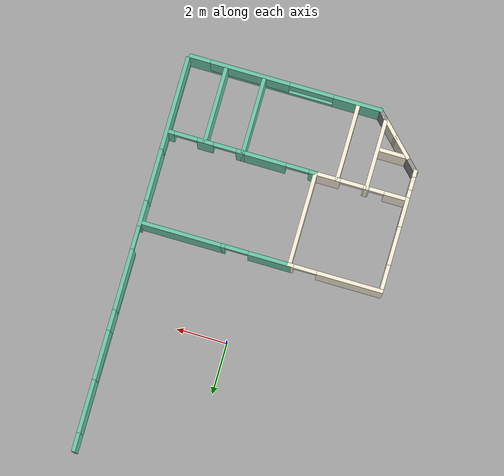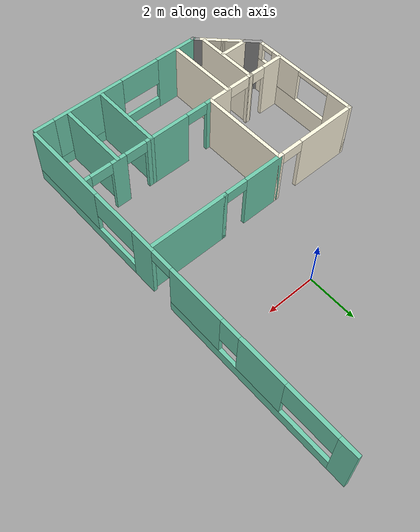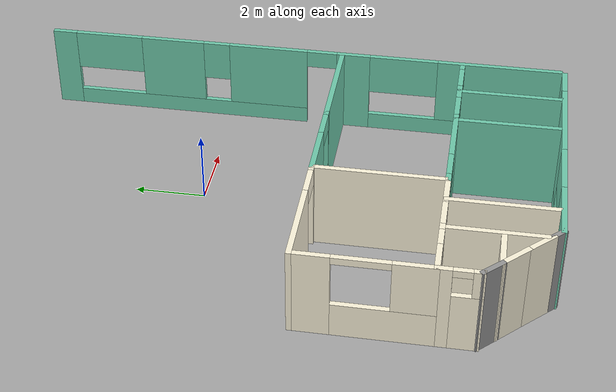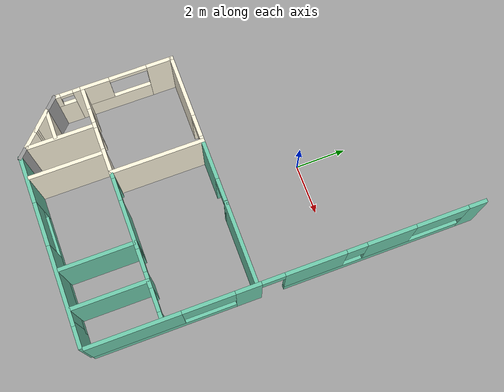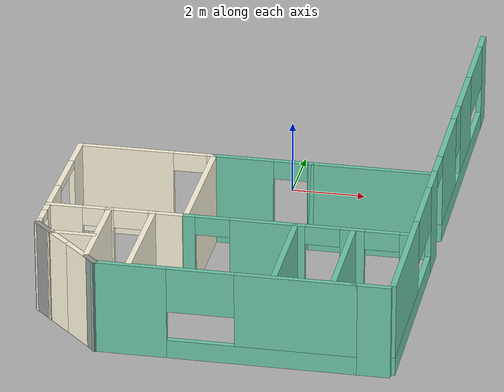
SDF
<sdf version="1.6">
 <model name="Building">
  <pose>-0.371028 -2.14186 0 0 -0 0</pose>
  <link name="Wall_103">
   <collision name="Wall_103_Collision">
    <geometry><box><size>2.75 0.15 2.5</size></box></geometry>
    <pose>0 0 1.25 0 -0 0</pose>
   </collision>
   <visual name="Wall_103_Visual">
    <pose>0 0 1.25 0 -0 0</pose>
    <geometry><box><size>2.75 0.15 2.5</size></box></geometry>
    <material>
     <script><uri>file://media/materials/scripts/gazebo.material</uri><name>Gazebo/Grey</name></script>
     <ambient>1 0.968627 0.870588 1</ambient>
    </material>
    <meta><layer>0</layer></meta>
   </visual>
   <pose>-3.10082 -6.11639 0 0 -0 1.5708</pose>
  </link>
  <link name="Wall_105">
   <collision name="Wall_105_Collision">
    <geometry><box><size>1.0071 0.15 2.5</size></box></geometry>
    <pose>0 0 1.25 0 -0 0</pose>
   </collision>
   <visual name="Wall_105_Visual">
    <pose>0 0 1.25 0 -0 0</pose>
    <geometry><box><size>1.0071 0.15 2.5</size></box></geometry>
    <material>
     <script><uri>file://media/materials/scripts/gazebo.material</uri><name>Gazebo/Grey</name></script>
     <ambient>1 0.968627 0.870588 1</ambient>
    </material>
    <meta><layer>0</layer></meta>
   </visual>
   <pose>-3.96602 -6.6535 0 0 0 -0.777148</pose>
  </link>
  <link name="Wall_106">
   <collision name="Wall_106_Collision">
    <geometry><box><size>1 0.15 2.5</size></box></geometry>
    <pose>0 0 1.25 0 -0 0</pose>
   </collision>
   <visual name="Wall_106_Visual">
    <pose>0 0 1.25 0 -0 0</pose>
    <geometry><box><size>1 0.15 2.5</size></box></geometry>
    <material>
     <script><uri>file://media/materials/scripts/gazebo.material</uri><name>Gazebo/Grey</name></script>
     <ambient>1 0.968627 0.870588 1</ambient>
    </material>
    <meta><layer>0</layer></meta>
   </visual>
   <pose>-3.35998 -7.25454 0 0 0 -0.785398</pose>
  </link>
  <link name="Wall_107">
   <collision name="Wall_107_Collision">
    <geometry><box><size>0.5 0.15 2.5</size></box></geometry>
    <pose>0 0 1.25 0 -0 0</pose>
   </collision>
   <visual name="Wall_107_Visual">
    <pose>0 0 1.25 0 -0 0</pose>
    <geometry><box><size>0.5 0.15 2.5</size></box></geometry>
    <material>
     <script><uri>file://media/materials/scripts/gazebo.material</uri><name>Gazebo/Grey</name></script>
     <ambient>1 1 1 1</ambient>
    </material>
    <meta><layer>0</layer></meta>
   </visual>
   <pose>-2.93571 -7.6788 0 0 0 -0.785398</pose>
  </link>
  <link name="Wall_108">
   <pose>0.488031 -7.80255 0 0 -0 0</pose>
   <visual name="Wall_108_Visual_0">
    <pose>-2.41446 0 1.25 0 -0 0</pose>
    <geometry><box><size>1.92107 0.15 2.5</size></box></geometry>
    <material>
     <script><uri>file://media/materials/scripts/gazebo.material</uri><name>Gazebo/Grey</name></script>
     <ambient>0.435294 0.796078 0.67451 1</ambient>
    </material>
    <meta><layer>0</layer></meta>
   </visual>
   <collision name="Wall_108_Collision_0">
    <geometry><box><size>1.92107 0.15 2.5</size></box></geometry>
    <pose>-2.41446 0 1.25 0 -0 0</pose>
   </collision>
   <visual name="Wall_108_Visual_1">
    <pose>0.960535 0 0.25 0 -0 0</pose>
    <geometry><box><size>4.82893 0.15 0.5</size></box></geometry>
    <material>
     <script><uri>file://media/materials/scripts/gazebo.material</uri><name>Gazebo/Grey</name></script>
     <ambient>0.435294 0.796078 0.67451 1</ambient>
    </material>
    <meta><layer>0</layer></meta>
   </visual>
   <collision name="Wall_108_Collision_1">
    <geometry><box><size>4.82893 0.15 0.5</size></box></geometry>
    <pose>0.960535 0 0.25 0 -0 0</pose>
   </collision>
   <visual name="Wall_108_Visual_2">
    <pose>1.82294 0 1.5 0 -0 0</pose>
    <geometry><box><size>3.10413 0.15 2</size></box></geometry>
    <material>
     <script><uri>file://media/materials/scripts/gazebo.material</uri><name>Gazebo/Grey</name></script>
     <ambient>0.435294 0.796078 0.67451 1</ambient>
    </material>
    <meta><layer>0</layer></meta>
   </visual>
   <collision name="Wall_108_Collision_2">
    <geometry><box><size>3.10413 0.15 2</size></box></geometry>
    <pose>1.82294 0 1.5 0 -0 0</pose>
   </collision>
   <visual name="Wall_108_Visual_3">
    <pose>-0.591528 0 1.9 0 -0 0</pose>
    <geometry><box><size>1.7248 0.15 1.2</size></box></geometry>
    <material>
     <script><uri>file://media/materials/scripts/gazebo.material</uri><name>Gazebo/Grey</name></script>
     <ambient>0.435294 0.796078 0.67451 1</ambient>
    </material>
    <meta><layer>0</layer></meta>
   </visual>
   <collision name="Wall_108_Collision_3">
    <geometry><box><size>1.7248 0.15 1.2</size></box></geometry>
    <pose>-0.591528 0 1.9 0 -0 0</pose>
   </collision>
  </link>
  <link name="Wall_112">
   <collision name="Wall_112_Collision">
    <geometry><box><size>1 0.15 2.5</size></box></geometry>
    <pose>0 0 1.25 0 -0 0</pose>
   </collision>
   <visual name="Wall_112_Visual">
    <pose>0 0 1.25 0 -0 0</pose>
    <geometry><box><size>1 0.15 2.5</size></box></geometry>
    <material>
     <script><uri>file://media/materials/scripts/gazebo.material</uri><name>Gazebo/Grey</name></script>
     <ambient>0.435294 0.796078 0.67451 1</ambient>
    </material>
    <meta><layer>0</layer></meta>
   </visual>
   <pose>4.21303 -7.80255 0 0 -0 0</pose>
  </link>
  <link name="Wall_131">
   <pose>0.319198 -4.81871 0 0 -0 0</pose>
   <visual name="Wall_131_Visual_0">
    <pose>-1.33501 0 1.25 0 -0 0</pose>
    <geometry><box><size>0.329979 0.15 2.5</size></box></geometry>
    <material>
     <script><uri>file://media/materials/scripts/gazebo.material</uri><name>Gazebo/Grey</name></script>
     <ambient>0.435294 0.796078 0.67451 1</ambient>
    </material>
    <meta><layer>0</layer></meta>
   </visual>
   <collision name="Wall_131_Collision_0">
    <geometry><box><size>0.329979 0.15 2.5</size></box></geometry>
    <pose>-1.33501 0 1.25 0 -0 0</pose>
   </collision>
   <visual name="Wall_131_Visual_1">
    <pose>0.614989 0 1.25 0 -0 0</pose>
    <geometry><box><size>1.77002 0.15 2.5</size></box></geometry>
    <material>
     <script><uri>file://media/materials/scripts/gazebo.material</uri><name>Gazebo/Grey</name></script>
     <ambient>0.435294 0.796078 0.67451 1</ambient>
    </material>
    <meta><layer>0</layer></meta>
   </visual>
   <collision name="Wall_131_Collision_1">
    <geometry><box><size>1.77002 0.15 2.5</size></box></geometry>
    <pose>0.614989 0 1.25 0 -0 0</pose>
   </collision>
   <visual name="Wall_131_Visual_2">
    <pose>-0.720021 0 2.25 0 -0 0</pose>
    <geometry><box><size>0.9 0.15 0.5</size></box></geometry>
    <material>
     <script><uri>file://media/materials/scripts/gazebo.material</uri><name>Gazebo/Grey</name></script>
     <ambient>0.435294 0.796078 0.67451 1</ambient>
    </material>
    <meta><layer>0</layer></meta>
   </visual>
   <collision name="Wall_131_Collision_2">
    <geometry><box><size>0.9 0.15 0.5</size></box></geometry>
    <pose>-0.720021 0 2.25 0 -0 0</pose>
   </collision>
  </link>
  <link name="Wall_132">
   <collision name="Wall_132_Collision">
    <geometry><box><size>3 0.15 2.5</size></box></geometry>
    <pose>0 0 1.25 0 -0 0</pose>
   </collision>
   <visual name="Wall_132_Visual">
    <pose>0 0 1.25 0 -0 0</pose>
    <geometry><box><size>3 0.15 2.5</size></box></geometry>
    <material>
     <script><uri>file://media/materials/scripts/gazebo.material</uri><name>Gazebo/Grey</name></script>
     <ambient>0.435294 0.796078 0.67451 1</ambient>
    </material>
    <meta><layer>0</layer></meta>
   </visual>
   <pose>1.7442 -6.24371 0 0 0 -1.5708</pose>
  </link>
  <link name="Wall_135">
   <pose>3.1692 -4.81871 0 0 -0 0</pose>
   <visual name="Wall_135_Visual_0">
    <pose>-1.33501 0 1.25 0 -0 0</pose>
    <geometry><box><size>0.329979 0.15 2.5</size></box></geometry>
    <material>
     <script><uri>file://media/materials/scripts/gazebo.material</uri><name>Gazebo/Grey</name></script>
     <ambient>0.435294 0.796078 0.67451 1</ambient>
    </material>
    <meta><layer>0</layer></meta>
   </visual>
   <collision name="Wall_135_Collision_0">
    <geometry><box><size>0.329979 0.15 2.5</size></box></geometry>
    <pose>-1.33501 0 1.25 0 -0 0</pose>
   </collision>
   <visual name="Wall_135_Visual_1">
    <pose>0.044978 0 1.25 0 -0 0</pose>
    <geometry><box><size>0.63 0.15 2.5</size></box></geometry>
    <material>
     <script><uri>file://media/materials/scripts/gazebo.material</uri><name>Gazebo/Grey</name></script>
     <ambient>0.435294 0.796078 0.67451 1</ambient>
    </material>
    <meta><layer>0</layer></meta>
   </visual>
   <collision name="Wall_135_Collision_1">
    <geometry><box><size>0.63 0.15 2.5</size></box></geometry>
    <pose>0.044978 0 1.25 0 -0 0</pose>
   </collision>
   <visual name="Wall_135_Visual_2">
    <pose>1.37999 0 1.25 0 -0 0</pose>
    <geometry><box><size>0.240022 0.15 2.5</size></box></geometry>
    <material>
     <script><uri>file://media/materials/scripts/gazebo.material</uri><name>Gazebo/Grey</name></script>
     <ambient>0.435294 0.796078 0.67451 1</ambient>
    </material>
    <meta><layer>0</layer></meta>
   </visual>
   <collision name="Wall_135_Collision_2">
    <geometry><box><size>0.240022 0.15 2.5</size></box></geometry>
    <pose>1.37999 0 1.25 0 -0 0</pose>
   </collision>
   <visual name="Wall_135_Visual_3">
    <pose>-0.720021 0 2.25 0 -0 0</pose>
    <geometry><box><size>0.9 0.15 0.5</size></box></geometry>
    <material>
     <script><uri>file://media/materials/scripts/gazebo.material</uri><name>Gazebo/Grey</name></script>
     <ambient>0.435294 0.796078 0.67451 1</ambient>
    </material>
    <meta><layer>0</layer></meta>
   </visual>
   <collision name="Wall_135_Collision_3">
    <geometry><box><size>0.9 0.15 0.5</size></box></geometry>
    <pose>-0.720021 0 2.25 0 -0 0</pose>
   </collision>
   <visual name="Wall_135_Visual_4">
    <pose>0.809978 0 2.25 0 -0 0</pose>
    <geometry><box><size>0.9 0.15 0.5</size></box></geometry>
    <material>
     <script><uri>file://media/materials/scripts/gazebo.material</uri><name>Gazebo/Grey</name></script>
     <ambient>0.435294 0.796078 0.67451 1</ambient>
    </material>
    <meta><layer>0</layer></meta>
   </visual>
   <collision name="Wall_135_Collision_4">
    <geometry><box><size>0.9 0.15 0.5</size></box></geometry>
    <pose>0.809978 0 2.25 0 -0 0</pose>
   </collision>
  </link>
  <link name="Wall_137">
   <collision name="Wall_137_Collision">
    <geometry><box><size>3 0.15 2.5</size></box></geometry>
    <pose>0 0 1.25 0 -0 0</pose>
   </collision>
   <visual name="Wall_137_Visual">
    <pose>0 0 1.25 0 -0 0</pose>
    <geometry><box><size>3 0.15 2.5</size></box></geometry>
    <material>
     <script><uri>file://media/materials/scripts/gazebo.material</uri><name>Gazebo/Grey</name></script>
     <ambient>0.435294 0.796078 0.67451 1</ambient>
    </material>
    <meta><layer>0</layer></meta>
   </visual>
   <pose>3.23918 -6.26139 0 0 0 -1.5708</pose>
  </link>
  <link name="Wall_36">
   <pose>4.73687 0.016508 0 0 0 -1.5708</pose>
   <visual name="Wall_36_Visual_0">
    <pose>-7.38566 0 1.25 0 -0 0</pose>
    <geometry><box><size>0.728677 0.15 2.5</size></box></geometry>
    <material>
     <script><uri>file://media/materials/scripts/gazebo.material</uri><name>Gazebo/Grey</name></script>
     <ambient>0.435294 0.796078 0.67451 1</ambient>
    </material>
    <meta><layer>0</layer></meta>
   </visual>
   <collision name="Wall_36_Collision_0">
    <geometry><box><size>0.728677 0.15 2.5</size></box></geometry>
    <pose>-7.38566 0 1.25 0 -0 0</pose>
   </collision>
   <visual name="Wall_36_Visual_1">
    <pose>1.57462 0 1.25 0 -0 0</pose>
    <geometry><box><size>1.00346 0.15 2.5</size></box></geometry>
    <material>
     <script><uri>file://media/materials/scripts/gazebo.material</uri><name>Gazebo/Grey</name></script>
     <ambient>0.435294 0.796078 0.67451 1</ambient>
    </material>
    <meta><layer>0</layer></meta>
   </visual>
   <collision name="Wall_36_Collision_1">
    <geometry><box><size>1.00346 0.15 2.5</size></box></geometry>
    <pose>1.57462 0 1.25 0 -0 0</pose>
   </collision>
   <visual name="Wall_36_Visual_2">
    <pose>-3.42421 0 0.25 0 -0 0</pose>
    <geometry><box><size>7.19422 0.15 0.5</size></box></geometry>
    <material>
     <script><uri>file://media/materials/scripts/gazebo.material</uri><name>Gazebo/Grey</name></script>
     <ambient>0.435294 0.796078 0.67451 1</ambient>
    </material>
    <meta><layer>0</layer></meta>
   </visual>
   <collision name="Wall_36_Collision_2">
    <geometry><box><size>7.19422 0.15 0.5</size></box></geometry>
    <pose>-3.42421 0 0.25 0 -0 0</pose>
   </collision>
   <visual name="Wall_36_Visual_3">
    <pose>4.91318 0 0.25 0 -0 0</pose>
    <geometry><box><size>5.67365 0.15 0.5</size></box></geometry>
    <material>
     <script><uri>file://media/materials/scripts/gazebo.material</uri><name>Gazebo/Grey</name></script>
     <ambient>0.435294 0.796078 0.67451 1</ambient>
    </material>
    <meta><layer>0</layer></meta>
   </visual>
   <collision name="Wall_36_Collision_3">
    <geometry><box><size>5.67365 0.15 0.5</size></box></geometry>
    <pose>4.91318 0 0.25 0 -0 0</pose>
   </collision>
   <visual name="Wall_36_Visual_4">
    <pose>-3.98224 0 1.5 0 -0 0</pose>
    <geometry><box><size>1.93682 0.15 2</size></box></geometry>
    <material>
     <script><uri>file://media/materials/scripts/gazebo.material</uri><name>Gazebo/Grey</name></script>
     <ambient>0.435294 0.796078 0.67451 1</ambient>
    </material>
    <meta><layer>0</layer></meta>
   </visual>
   <collision name="Wall_36_Collision_4">
    <geometry><box><size>1.93682 0.15 2</size></box></geometry>
    <pose>-3.98224 0 1.5 0 -0 0</pose>
   </collision>
   <visual name="Wall_36_Visual_5">
    <pose>-1.02047 0 1.5 0 -0 0</pose>
    <geometry><box><size>2.38673 0.15 2</size></box></geometry>
    <material>
     <script><uri>file://media/materials/scripts/gazebo.material</uri><name>Gazebo/Grey</name></script>
     <ambient>0.435294 0.796078 0.67451 1</ambient>
    </material>
    <meta><layer>0</layer></meta>
   </visual>
   <collision name="Wall_36_Collision_5">
    <geometry><box><size>2.38673 0.15 2</size></box></geometry>
    <pose>-1.02047 0 1.5 0 -0 0</pose>
   </collision>
   <visual name="Wall_36_Visual_6">
    <pose>-1.02047 0 1.5 0 -0 0</pose>
    <geometry><box><size>2.38673 0.15 2</size></box></geometry>
    <material>
     <script><uri>file://media/materials/scripts/gazebo.material</uri><name>Gazebo/Grey</name></script>
     <ambient>0.435294 0.796078 0.67451 1</ambient>
    </material>
    <meta><layer>0</layer></meta>
   </visual>
   <collision name="Wall_36_Collision_6">
    <geometry><box><size>2.38673 0.15 2</size></box></geometry>
    <pose>-1.02047 0 1.5 0 -0 0</pose>
   </collision>
   <visual name="Wall_36_Visual_7">
    <pose>5.92595 0 1.5 0 -0 0</pose>
    <geometry><box><size>3.64809 0.15 2</size></box></geometry>
    <material>
     <script><uri>file://media/materials/scripts/gazebo.material</uri><name>Gazebo/Grey</name></script>
     <ambient>0.435294 0.796078 0.67451 1</ambient>
    </material>
    <meta><layer>0</layer></meta>
   </visual>
   <collision name="Wall_36_Collision_7">
    <geometry><box><size>3.64809 0.15 2</size></box></geometry>
    <pose>5.92595 0 1.5 0 -0 0</pose>
   </collision>
   <visual name="Wall_36_Visual_8">
    <pose>-5.98599 0 1.9 0 -0 0</pose>
    <geometry><box><size>2.07067 0.15 1.2</size></box></geometry>
    <material>
     <script><uri>file://media/materials/scripts/gazebo.material</uri><name>Gazebo/Grey</name></script>
     <ambient>0.435294 0.796078 0.67451 1</ambient>
    </material>
    <meta><layer>0</layer></meta>
   </visual>
   <collision name="Wall_36_Collision_8">
    <geometry><box><size>2.07067 0.15 1.2</size></box></geometry>
    <pose>-5.98599 0 1.9 0 -0 0</pose>
   </collision>
   <visual name="Wall_36_Visual_9">
    <pose>3.08913 0 1.9 0 -0 0</pose>
    <geometry><box><size>2.02556 0.15 1.2</size></box></geometry>
    <material>
     <script><uri>file://media/materials/scripts/gazebo.material</uri><name>Gazebo/Grey</name></script>
     <ambient>0.435294 0.796078 0.67451 1</ambient>
    </material>
    <meta><layer>0</layer></meta>
   </visual>
   <collision name="Wall_36_Collision_9">
    <geometry><box><size>2.02556 0.15 1.2</size></box></geometry>
    <pose>3.08913 0 1.9 0 -0 0</pose>
   </collision>
   <visual name="Wall_36_Visual_10">
    <pose>-2.61383 0 1.9 0 -0 0</pose>
    <geometry><box><size>0.8 0.15 1.2</size></box></geometry>
    <material>
     <script><uri>file://media/materials/scripts/gazebo.material</uri><name>Gazebo/Grey</name></script>
     <ambient>0.435294 0.796078 0.67451 1</ambient>
    </material>
    <meta><layer>0</layer></meta>
   </visual>
   <collision name="Wall_36_Collision_10">
    <geometry><box><size>0.8 0.15 1.2</size></box></geometry>
    <pose>-2.61383 0 1.9 0 -0 0</pose>
   </collision>
   <visual name="Wall_36_Visual_11">
    <pose>0.622896 0 2.25 0 -0 0</pose>
    <geometry><box><size>0.9 0.15 0.5</size></box></geometry>
    <material>
     <script><uri>file://media/materials/scripts/gazebo.material</uri><name>Gazebo/Grey</name></script>
     <ambient>0.435294 0.796078 0.67451 1</ambient>
    </material>
    <meta><layer>0</layer></meta>
   </visual>
   <collision name="Wall_36_Collision_11">
    <geometry><box><size>0.9 0.15 0.5</size></box></geometry>
    <pose>0.622896 0 2.25 0 -0 0</pose>
   </collision>
   <visual name="Wall_36_Visual_12">
    <pose>0.622896 0 2.25 0 -0 0</pose>
    <geometry><box><size>0.9 0.15 0.5</size></box></geometry>
    <material>
     <script><uri>file://media/materials/scripts/gazebo.material</uri><name>Gazebo/Grey</name></script>
     <ambient>0.435294 0.796078 0.67451 1</ambient>
    </material>
    <meta><layer>0</layer></meta>
   </visual>
   <collision name="Wall_36_Collision_12">
    <geometry><box><size>0.9 0.15 0.5</size></box></geometry>
    <pose>0.622896 0 2.25 0 -0 0</pose>
   </collision>
  </link>
  <link name="Wall_46">
   <pose>-2.9058 -1.21871 0 0 -0 0</pose>
   <visual name="Wall_46_Visual_0">
    <pose>-0.575011 0 1.25 0 -0 0</pose>
    <geometry><box><size>2.59998 0.15 2.5</size></box></geometry>
    <material>
     <script><uri>file://media/materials/scripts/gazebo.material</uri><name>Gazebo/Grey</name></script>
     <ambient>1 0.968627 0.870588 1</ambient>
    </material>
    <meta><layer>0</layer></meta>
   </visual>
   <collision name="Wall_46_Collision_0">
    <geometry><box><size>2.59998 0.15 2.5</size></box></geometry>
    <pose>-0.575011 0 1.25 0 -0 0</pose>
   </collision>
   <visual name="Wall_46_Visual_1">
    <pose>1.74999 0 1.25 0 -0 0</pose>
    <geometry><box><size>0.250022 0.15 2.5</size></box></geometry>
    <material>
     <script><uri>file://media/materials/scripts/gazebo.material</uri><name>Gazebo/Grey</name></script>
     <ambient>1 0.968627 0.870588 1</ambient>
    </material>
    <meta><layer>0</layer></meta>
   </visual>
   <collision name="Wall_46_Collision_1">
    <geometry><box><size>0.250022 0.15 2.5</size></box></geometry>
    <pose>1.74999 0 1.25 0 -0 0</pose>
   </collision>
   <visual name="Wall_46_Visual_2">
    <pose>1.17498 0 2.25 0 -0 0</pose>
    <geometry><box><size>0.9 0.15 0.5</size></box></geometry>
    <material>
     <script><uri>file://media/materials/scripts/gazebo.material</uri><name>Gazebo/Grey</name></script>
     <ambient>1 0.968627 0.870588 1</ambient>
    </material>
    <meta><layer>0</layer></meta>
   </visual>
   <collision name="Wall_46_Collision_2">
    <geometry><box><size>0.9 0.15 0.5</size></box></geometry>
    <pose>1.17498 0 2.25 0 -0 0</pose>
   </collision>
  </link>
  <link name="Wall_62">
   <collision name="Wall_62_Collision">
    <geometry><box><size>3.75 0.15 2.5</size></box></geometry>
    <pose>0 0 1.25 0 -0 0</pose>
   </collision>
   <visual name="Wall_62_Visual">
    <pose>0 0 1.25 0 -0 0</pose>
    <geometry><box><size>3.75 0.15 2.5</size></box></geometry>
    <material>
     <script><uri>file://media/materials/scripts/gazebo.material</uri><name>Gazebo/Grey</name></script>
     <ambient>1 0.968627 0.870588 1</ambient>
    </material>
    <meta><layer>0</layer></meta>
   </visual>
   <pose>-1.1058 -3.01871 0 0 0 -1.5708</pose>
  </link>
  <link name="Wall_71">
   <pose>-4.7058 -3.01871 0 0 0 -1.5708</pose>
   <visual name="Wall_71_Visual_0">
    <pose>-1.32556 0 1.25 0 -0 0</pose>
    <geometry><box><size>1.09888 0.15 2.5</size></box></geometry>
    <material>
     <script><uri>file://media/materials/scripts/gazebo.material</uri><name>Gazebo/Grey</name></script>
     <ambient>1 0.968627 0.870588 1</ambient>
    </material>
    <meta><layer>0</layer></meta>
   </visual>
   <collision name="Wall_71_Collision_0">
    <geometry><box><size>1.09888 0.15 2.5</size></box></geometry>
    <pose>-1.32556 0 1.25 0 -0 0</pose>
   </collision>
   <visual name="Wall_71_Visual_1">
    <pose>0.549443 0 0.5 0 -0 0</pose>
    <geometry><box><size>2.65111 0.15 1</size></box></geometry>
    <material>
     <script><uri>file://media/materials/scripts/gazebo.material</uri><name>Gazebo/Grey</name></script>
     <ambient>1 0.968627 0.870588 1</ambient>
    </material>
    <meta><layer>0</layer></meta>
   </visual>
   <collision name="Wall_71_Collision_1">
    <geometry><box><size>2.65111 0.15 1</size></box></geometry>
    <pose>0.549443 0 0.5 0 -0 0</pose>
   </collision>
   <visual name="Wall_71_Visual_2">
    <pose>1.29944 0 1.75 0 -0 0</pose>
    <geometry><box><size>1.15112 0.15 1.5</size></box></geometry>
    <material>
     <script><uri>file://media/materials/scripts/gazebo.material</uri><name>Gazebo/Grey</name></script>
     <ambient>1 0.968627 0.870588 1</ambient>
    </material>
    <meta><layer>0</layer></meta>
   </visual>
   <collision name="Wall_71_Collision_2">
    <geometry><box><size>1.15112 0.15 1.5</size></box></geometry>
    <pose>1.29944 0 1.75 0 -0 0</pose>
   </collision>
   <visual name="Wall_71_Visual_3">
    <pose>-0.026115 0 2.4 0 -0 0</pose>
    <geometry><box><size>1.5 0.15 0.2</size></box></geometry>
    <material>
     <script><uri>file://media/materials/scripts/gazebo.material</uri><name>Gazebo/Grey</name></script>
     <ambient>1 0.968627 0.870588 1</ambient>
    </material>
    <meta><layer>0</layer></meta>
   </visual>
   <collision name="Wall_71_Collision_3">
    <geometry><box><size>1.5 0.15 0.2</size></box></geometry>
    <pose>-0.026115 0 2.4 0 -0 0</pose>
   </collision>
  </link>
  <link name="Wall_72">
   <pose>-2.9058 -4.81871 0 0 -0 0</pose>
   <visual name="Wall_72_Visual_0">
    <pose>-1.38251 0 1.25 0 -0 0</pose>
    <geometry><box><size>0.984979 0.15 2.5</size></box></geometry>
    <material>
     <script><uri>file://media/materials/scripts/gazebo.material</uri><name>Gazebo/Grey</name></script>
     <ambient>1 0.968627 0.870588 1</ambient>
    </material>
    <meta><layer>0</layer></meta>
   </visual>
   <collision name="Wall_72_Collision_0">
    <geometry><box><size>0.984979 0.15 2.5</size></box></geometry>
    <pose>-1.38251 0 1.25 0 -0 0</pose>
   </collision>
   <visual name="Wall_72_Visual_1">
    <pose>-0.192521 0 1.25 0 -0 0</pose>
    <geometry><box><size>0.235 0.15 2.5</size></box></geometry>
    <material>
     <script><uri>file://media/materials/scripts/gazebo.material</uri><name>Gazebo/Grey</name></script>
     <ambient>1 0.968627 0.870588 1</ambient>
    </material>
    <meta><layer>0</layer></meta>
   </visual>
   <collision name="Wall_72_Collision_1">
    <geometry><box><size>0.235 0.15 2.5</size></box></geometry>
    <pose>-0.192521 0 1.25 0 -0 0</pose>
   </collision>
   <visual name="Wall_72_Visual_2">
    <pose>1.34999 0 1.25 0 -0 0</pose>
    <geometry><box><size>1.05002 0.15 2.5</size></box></geometry>
    <material>
     <script><uri>file://media/materials/scripts/gazebo.material</uri><name>Gazebo/Grey</name></script>
     <ambient>1 0.968627 0.870588 1</ambient>
    </material>
    <meta><layer>0</layer></meta>
   </visual>
   <collision name="Wall_72_Collision_2">
    <geometry><box><size>1.05002 0.15 2.5</size></box></geometry>
    <pose>1.34999 0 1.25 0 -0 0</pose>
   </collision>
   <visual name="Wall_72_Visual_3">
    <pose>-0.600021 0 2.25 0 -0 0</pose>
    <geometry><box><size>0.58 0.15 0.5</size></box></geometry>
    <material>
     <script><uri>file://media/materials/scripts/gazebo.material</uri><name>Gazebo/Grey</name></script>
     <ambient>1 0.968627 0.870588 1</ambient>
    </material>
    <meta><layer>0</layer></meta>
   </visual>
   <collision name="Wall_72_Collision_3">
    <geometry><box><size>0.58 0.15 0.5</size></box></geometry>
    <pose>-0.600021 0 2.25 0 -0 0</pose>
   </collision>
   <visual name="Wall_72_Visual_4">
    <pose>0.374979 0 2.25 0 -0 0</pose>
    <geometry><box><size>0.9 0.15 0.5</size></box></geometry>
    <material>
     <script><uri>file://media/materials/scripts/gazebo.material</uri><name>Gazebo/Grey</name></script>
     <ambient>1 0.968627 0.870588 1</ambient>
    </material>
    <meta><layer>0</layer></meta>
   </visual>
   <collision name="Wall_72_Collision_4">
    <geometry><box><size>0.9 0.15 0.5</size></box></geometry>
    <pose>0.374979 0 2.25 0 -0 0</pose>
   </collision>
  </link>
  <link name="Wall_74">
   <pose>0.194198 -1.21871 0 0 -0 0</pose>
   <visual name="Wall_74_Visual_0">
    <pose>-0.535011 0 1.25 0 -0 0</pose>
    <geometry><box><size>1.67998 0.15 2.5</size></box></geometry>
    <material>
     <script><uri>file://media/materials/scripts/gazebo.material</uri><name>Gazebo/Grey</name></script>
     <ambient>0.435294 0.796078 0.67451 1</ambient>
    </material>
    <meta><layer>0</layer></meta>
   </visual>
   <collision name="Wall_74_Collision_0">
    <geometry><box><size>1.67998 0.15 2.5</size></box></geometry>
    <pose>-0.535011 0 1.25 0 -0 0</pose>
   </collision>
   <visual name="Wall_74_Visual_1">
    <pose>1.28999 0 1.25 0 -0 0</pose>
    <geometry><box><size>0.170021 0.15 2.5</size></box></geometry>
    <material>
     <script><uri>file://media/materials/scripts/gazebo.material</uri><name>Gazebo/Grey</name></script>
     <ambient>0.435294 0.796078 0.67451 1</ambient>
    </material>
    <meta><layer>0</layer></meta>
   </visual>
   <collision name="Wall_74_Collision_1">
    <geometry><box><size>0.170021 0.15 2.5</size></box></geometry>
    <pose>1.28999 0 1.25 0 -0 0</pose>
   </collision>
   <visual name="Wall_74_Visual_2">
    <pose>0.754979 0 2.25 0 -0 0</pose>
    <geometry><box><size>0.9 0.15 0.5</size></box></geometry>
    <material>
     <script><uri>file://media/materials/scripts/gazebo.material</uri><name>Gazebo/Grey</name></script>
     <ambient>0.435294 0.796078 0.67451 1</ambient>
    </material>
    <meta><layer>0</layer></meta>
   </visual>
   <collision name="Wall_74_Collision_2">
    <geometry><box><size>0.9 0.15 0.5</size></box></geometry>
    <pose>0.754979 0 2.25 0 -0 0</pose>
   </collision>
  </link>
  <link name="Wall_82">
   <collision name="Wall_82_Collision">
    <geometry><box><size>3.25 0.15 2.5</size></box></geometry>
    <pose>0 0 1.25 0 -0 0</pose>
   </collision>
   <visual name="Wall_82_Visual">
    <pose>0 0 1.25 0 -0 0</pose>
    <geometry><box><size>3.25 0.15 2.5</size></box></geometry>
    <material>
     <script><uri>file://media/materials/scripts/gazebo.material</uri><name>Gazebo/Grey</name></script>
     <ambient>0.435294 0.796078 0.67451 1</ambient>
    </material>
    <meta><layer>0</layer></meta>
   </visual>
   <pose>3.0442 -1.21871 0 0 -0 0</pose>
  </link>
  <link name="Wall_86">
   <collision name="Wall_86_Collision">
    <geometry><box><size>3 0.15 2.5</size></box></geometry>
    <pose>0 0 1.25 0 -0 0</pose>
   </collision>
   <visual name="Wall_86_Visual">
    <pose>0 0 1.25 0 -0 0</pose>
    <geometry><box><size>3 0.15 2.5</size></box></geometry>
    <material>
     <script><uri>file://media/materials/scripts/gazebo.material</uri><name>Gazebo/Grey</name></script>
     <ambient>1 0.968627 0.870588 1</ambient>
    </material>
    <meta><layer>0</layer></meta>
   </visual>
   <pose>-1.95082 -6.26139 0 0 0 -1.5708</pose>
  </link>
  <link name="Wall_91">
   <pose>-4.7058 -5.36871 0 0 0 -1.5708</pose>
   <visual name="Wall_91_Visual_0">
    <pose>-0.399464 0 1.25 0 -0 0</pose>
    <geometry><box><size>0.451073 0.15 2.5</size></box></geometry>
    <material>
     <script><uri>file://media/materials/scripts/gazebo.material</uri><name>Gazebo/Grey</name></script>
     <ambient>1 0.968627 0.870588 1</ambient>
    </material>
    <meta><layer>0</layer></meta>
   </visual>
   <collision name="Wall_91_Collision_0">
    <geometry><box><size>0.451073 0.15 2.5</size></box></geometry>
    <pose>-0.399464 0 1.25 0 -0 0</pose>
   </collision>
   <visual name="Wall_91_Visual_1">
    <pose>0.225536 0 0.85 0 -0 0</pose>
    <geometry><box><size>0.798927 0.15 1.7</size></box></geometry>
    <material>
     <script><uri>file://media/materials/scripts/gazebo.material</uri><name>Gazebo/Grey</name></script>
     <ambient>1 0.968627 0.870588 1</ambient>
    </material>
    <meta><layer>0</layer></meta>
   </visual>
   <collision name="Wall_91_Collision_1">
    <geometry><box><size>0.798927 0.15 1.7</size></box></geometry>
    <pose>0.225536 0 0.85 0 -0 0</pose>
   </collision>
   <visual name="Wall_91_Visual_2">
    <pose>0.475536 0 2.1 0 -0 0</pose>
    <geometry><box><size>0.298927 0.15 0.8</size></box></geometry>
    <material>
     <script><uri>file://media/materials/scripts/gazebo.material</uri><name>Gazebo/Grey</name></script>
     <ambient>1 0.968627 0.870588 1</ambient>
    </material>
    <meta><layer>0</layer></meta>
   </visual>
   <collision name="Wall_91_Collision_2">
    <geometry><box><size>0.298927 0.15 0.8</size></box></geometry>
    <pose>0.475536 0 2.1 0 -0 0</pose>
   </collision>
   <visual name="Wall_91_Visual_3">
    <pose>0.076073 0 2.4 0 -0 0</pose>
    <geometry><box><size>0.5 0.15 0.2</size></box></geometry>
    <material>
     <script><uri>file://media/materials/scripts/gazebo.material</uri><name>Gazebo/Grey</name></script>
     <ambient>1 0.968627 0.870588 1</ambient>
    </material>
    <meta><layer>0</layer></meta>
   </visual>
   <collision name="Wall_91_Collision_3">
    <geometry><box><size>0.5 0.15 0.2</size></box></geometry>
    <pose>0.076073 0 2.4 0 -0 0</pose>
   </collision>
  </link>
  <link name="Wall_92">
   <collision name="Wall_92_Collision">
    <geometry><box><size>0.764142 0.15 2.5</size></box></geometry>
    <pose>0 0 1.25 0 -0 0</pose>
   </collision>
   <visual name="Wall_92_Visual">
    <pose>0 0 1.25 0 -0 0</pose>
    <geometry><box><size>0.764142 0.15 2.5</size></box></geometry>
    <material>
     <script><uri>file://media/materials/scripts/gazebo.material</uri><name>Gazebo/Grey</name></script>
     <ambient>1 1 1 1</ambient>
    </material>
    <meta><layer>0</layer></meta>
   </visual>
   <pose>-4.48867 -6.13584 0 0 0 -0.785398</pose>
  </link>
  <link name="Wall_97">
   <collision name="Wall_97_Collision">
    <geometry><box><size>1.25 0.15 2.5</size></box></geometry>
    <pose>0 0 1.25 0 -0 0</pose>
   </collision>
   <visual name="Wall_97_Visual">
    <pose>0 0 1.25 0 -0 0</pose>
    <geometry><box><size>1.25 0.15 2.5</size></box></geometry>
    <material>
     <script><uri>file://media/materials/scripts/gazebo.material</uri><name>Gazebo/Grey</name></script>
     <ambient>1 0.968627 0.870588 1</ambient>
    </material>
    <meta><layer>0</layer></meta>
   </visual>
   <pose>-3.71154 -6.35298 0 0 -0 0</pose>
  </link>
  <static>1</static>
 </model>
</sdf>
